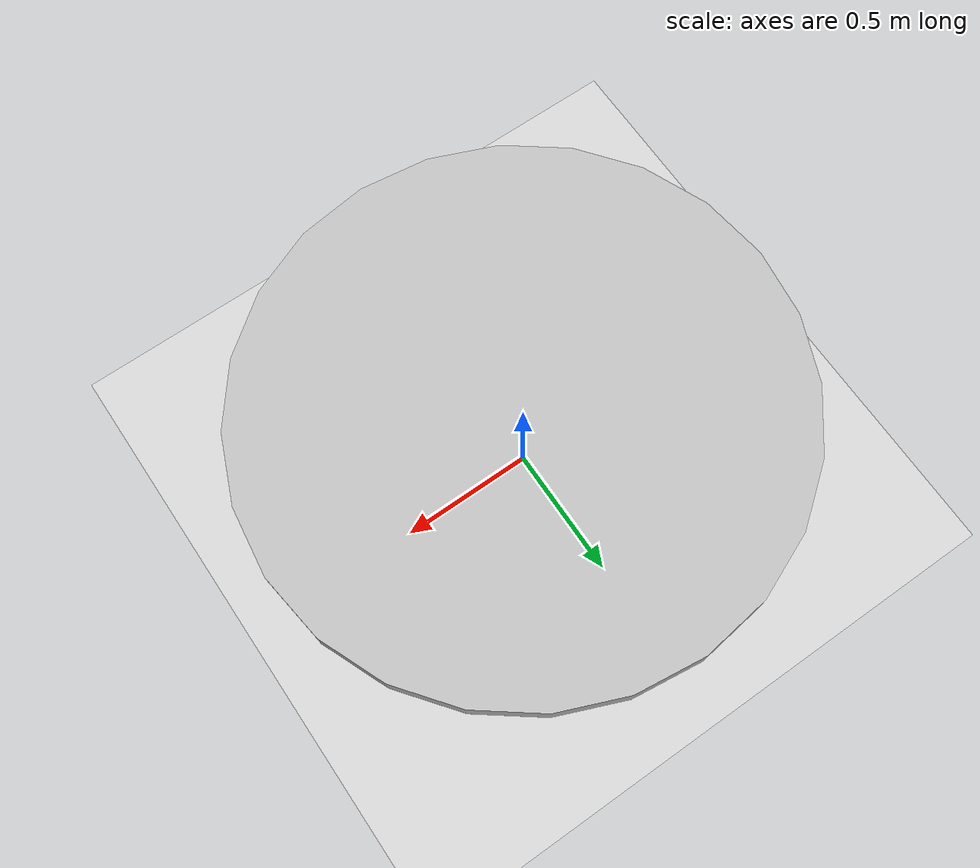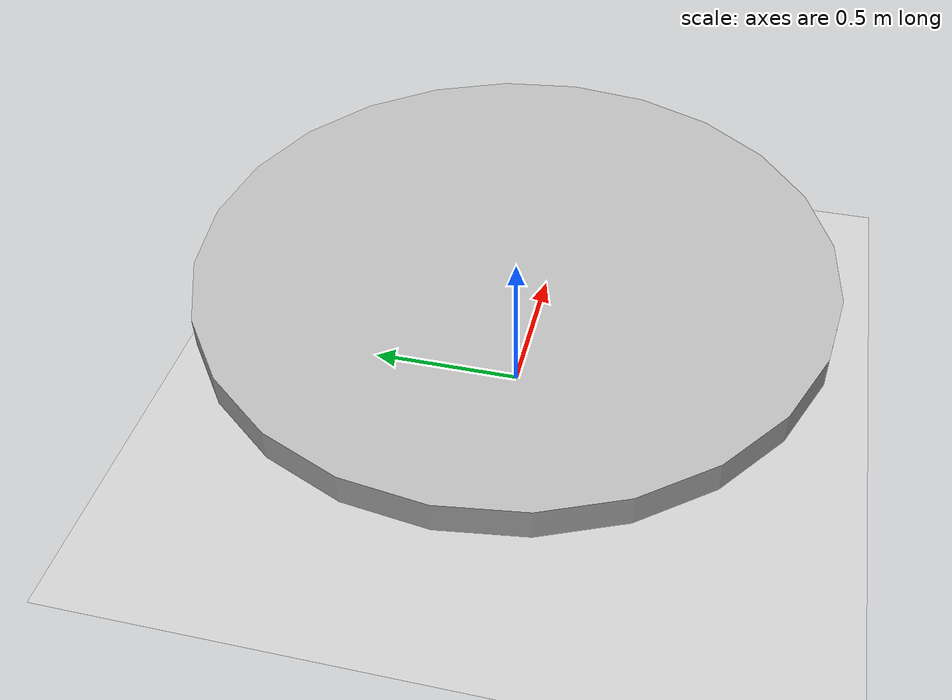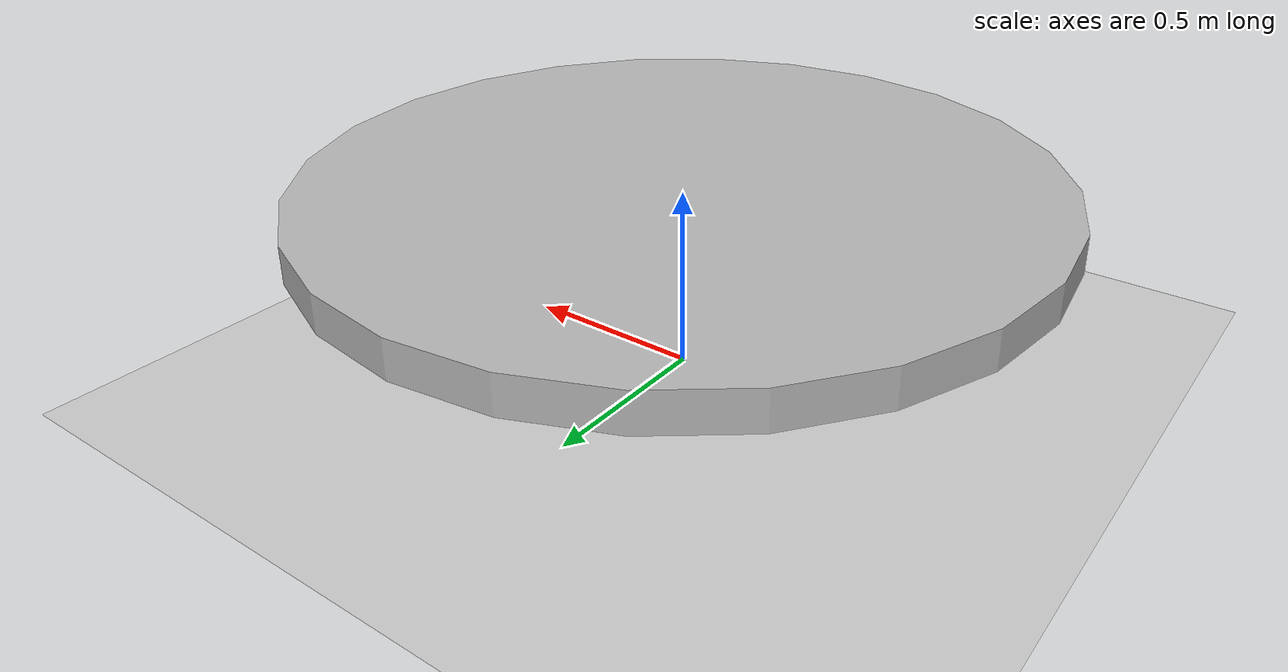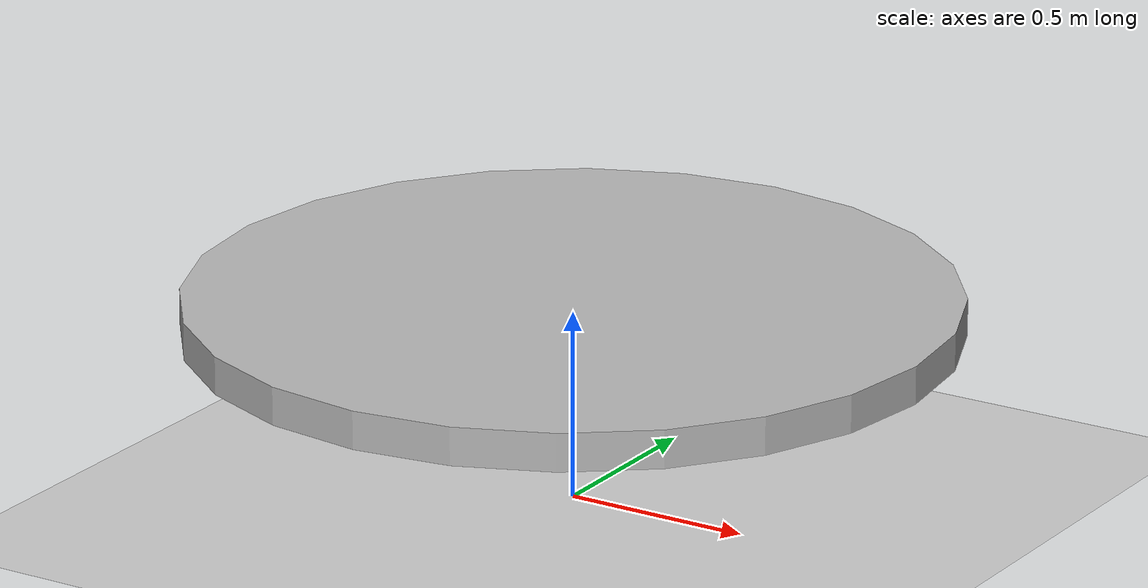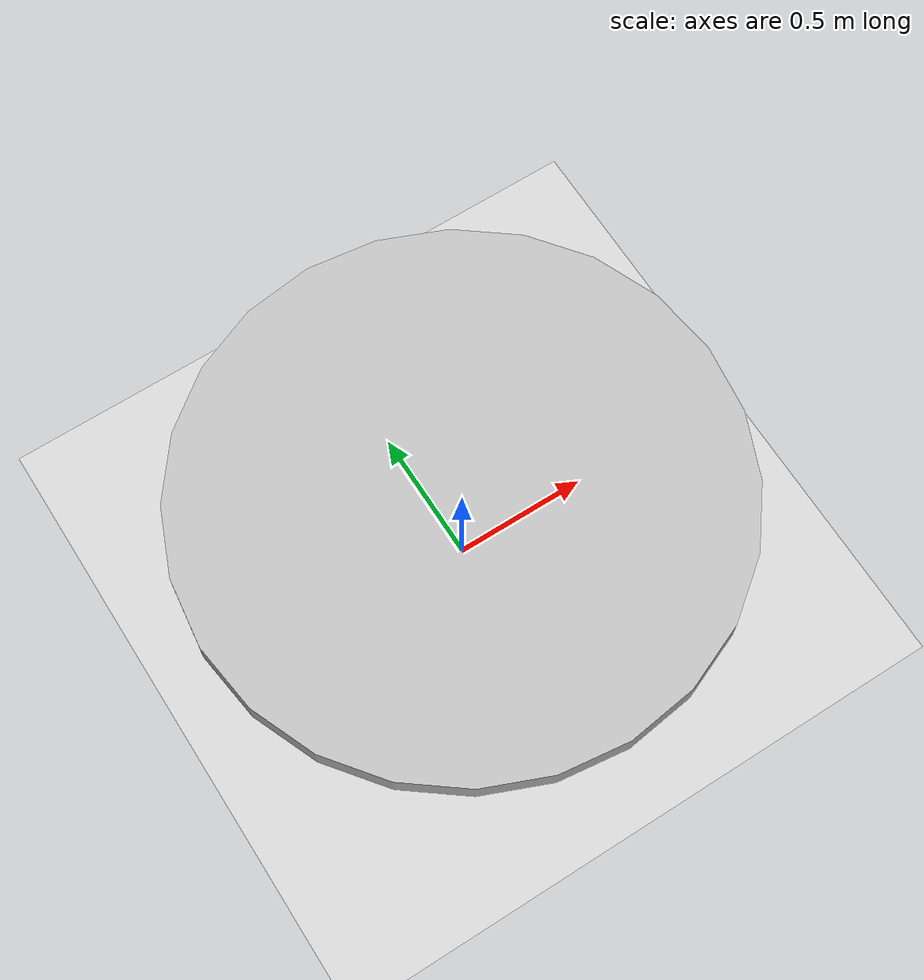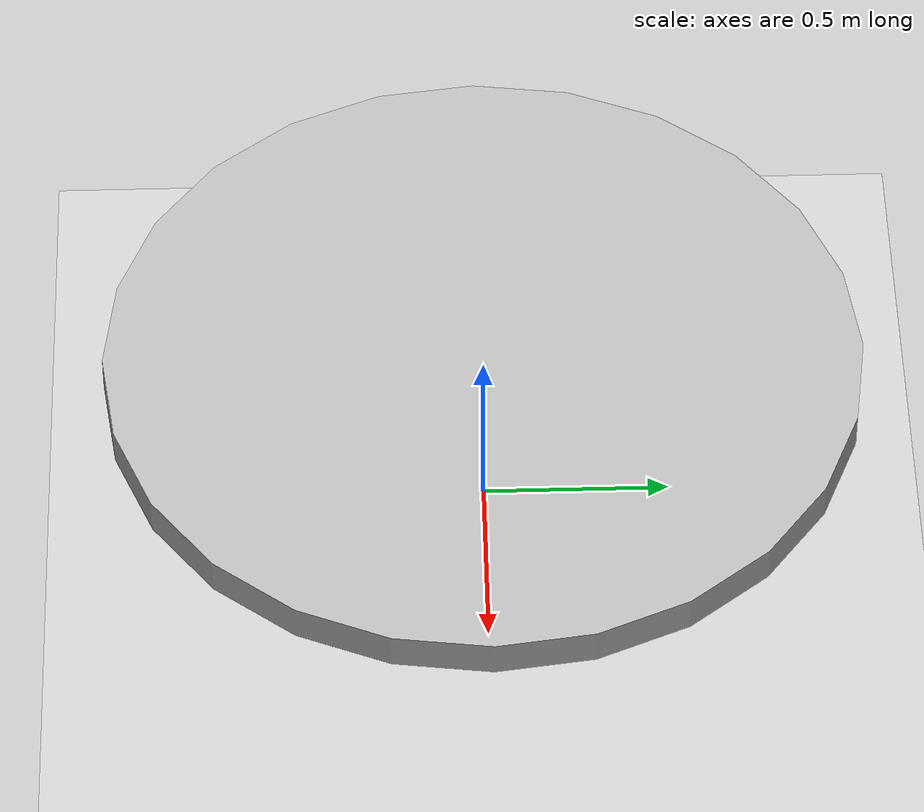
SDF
<?xml version="1.0"?>
<sdf version="1.4">
  <world name="animated_circle_world">

    <!-- Ground Plane -->
    <include>
      <uri>model://ground_plane</uri>
    </include>

    <include>
      <uri>model://sun</uri>
    </include>

    <model name="circle">
      <pose>0 0 0.5 0 0 0</pose>
      <link name="link">
        <collision name="collision">
          <geometry>
            <cylinder>
              <radius>1</radius>
              <length>0.1</length>
            </cylinder>
          </geometry>
        </collision>

        <visual name="visual">
          <geometry>
            <cylinder>
              <radius>1</radius>
              <length>0.1</length>
            </cylinder>
          </geometry>
        </visual>
      </link>

      <plugin name="push_animate" filename="libanimated_box.so"/>
    </model>
  </world>
</sdf>
